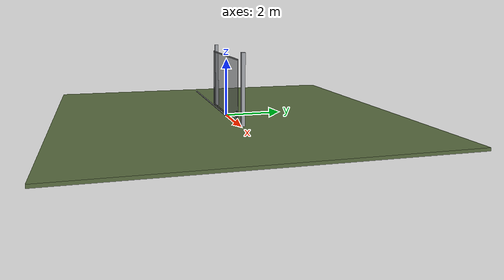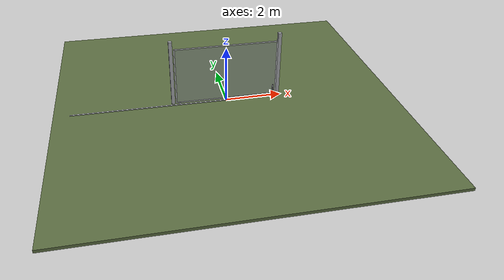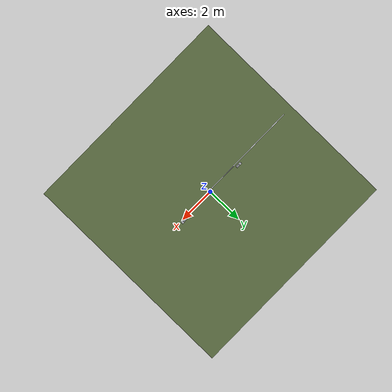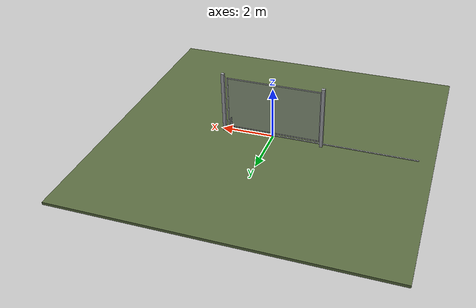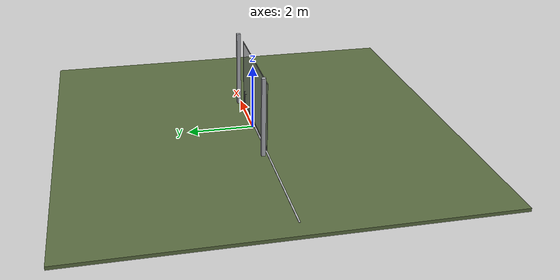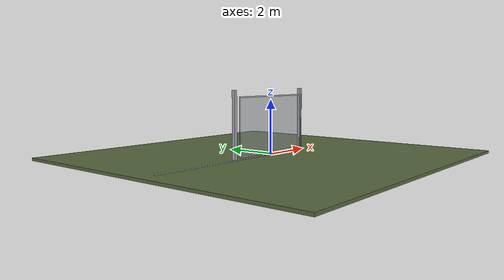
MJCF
<?xml version="1.0" ?>
<mujoco model="db0033_gate_sliding_full">
  <compiler angle="radian" meshdir="../../hardware" texturedir="../../textures" autolimits="true" inertiafromgeom="false"/>
  <option timestep="0.002" integrator="implicitfast" cone="elliptic" impratio="10" noslip_iterations="3">
    <flag multiccd="enable"/>
  </option>
  <size memory="16M"/>
  <default>
    <geom condim="4" solref="0.005 1" solimp="0.95 0.99 0.001"/>
    <joint solreflimit="0.005 1" solimplimit="0.95 0.99 0.001"/>
    <tendon solreflimit="0.005 1"/>
    <equality solref="0.002 1"/>
  </default>
  <visual>
    <headlight ambient="0.4 0.4 0.4" diffuse="0.7 0.7 0.7" specular="0.2 0.2 0.2"/>
    <quality shadowsize="4096"/>
    <map znear="0.01" zfar="60"/>
  </visual>
  <asset>
    <material name="mat_floor" rgba="0.35 0.42 0.25 1" specular="0.2" shininess="0.15" reflectance="0"/>
    <material name="mat_wall" rgba="0.78 0.76 0.7 1" specular="0.2" shininess="0.1" reflectance="0"/>
    <material name="mat_frame" rgba="0.65 0.66 0.68 1" specular="0.74" shininess="0.5" reflectance="0.36"/>
    <material name="mat_track" rgba="0.8 0.81 0.83 1" specular="0.8" shininess="0.6" reflectance="0.4"/>
    <material name="mat_leaf" rgba="0.7 0.71 0.72 1" specular="0.74" shininess="0.5" reflectance="0.36"/>
    <material name="mat_mesh_infill" rgba="0.6 0.62 0.64 0.55" specular="0.68" shininess="0.3" reflectance="0.1"/>
    <material name="mat_roller" rgba="0.65 0.66 0.68 1" specular="0.74" shininess="0.5" reflectance="0.36"/>
    <material name="mat_op_steel_galvanized" rgba="0.65 0.66 0.68 1" specular="0.74" shininess="0.5" reflectance="0.36"/>
    <material name="mat_keeper" rgba="0.65 0.66 0.68 1" specular="0.74" shininess="0.5" reflectance="0.36"/>
    <material name="mat_hook" rgba="0.75 0.76 0.77 1" specular="0.8" shininess="0.65" reflectance="0.4"/>
    <texture name="skybox" type="skybox" builtin="gradient" rgb1="0.6 0.7 0.85" rgb2="0.9 0.92 0.95" width="256" height="256"/>
  </asset>
  <worldbody>
    <light name="sun" pos="1.5 -2.5 4" dir="-0.3 0.5 -0.8" directional="true" diffuse="0.8 0.8 0.8" specular="0.3 0.3 0.3" castshadow="true"/>
    <light name="fill" pos="-1.5 2.5 3" dir="0.3 -0.5 -0.7" directional="true" diffuse="0.35 0.35 0.4" castshadow="false"/>
    <camera name="robot_view" pos="0 -4.046875 2.208125" xyaxes="1 0 0 0 0.26963 0.962964" fovy="52"/>
    <camera name="far_view" pos="0 4.046875 2.208125" xyaxes="-1 0 0 0 -0.26963 0.962964" fovy="52"/>
    <camera name="iso" pos="3.075625 -3.399375 2.855625" xyaxes="0.741536 0.670913 0 -0.242917 0.268487 0.932151" fovy="46"/>
    <camera name="detail_handle" pos="1.93 -1.2455 0.716" xyaxes="0.975133 0.221621 0 -0.065674 0.288965 0.955084" fovy="38"/>
    <geom name="floor" type="box" size="6 6 0.05" pos="0 0 -0.05" material="mat_floor" group="0" contype="1" conaffinity="1" friction="0.8 0.005 0.0001" density="2400"/>
    <geom name="post_l" type="box" size="0.06 0.06 1.2" pos="-1.885 0.08 1.2" material="mat_frame" group="0" contype="1" conaffinity="1" friction="0.6 0.005 0.0001" density="7850"/>
    <geom name="post_r" type="box" size="0.06 0.06 1.2" pos="1.885 0.08 1.2" material="mat_frame" group="0" contype="1" conaffinity="1" friction="0.6 0.005 0.0001" density="7850"/>
    <geom name="gate_rail" type="box" size="3.65 0.02 0.012" pos="-1.8 -0.06 0.012" material="mat_track" group="0" contype="1" conaffinity="1" friction="0.6 0.005 0.0001" density="2700"/>
    <geom name="leaf_socket_n" type="box" size="0.004 0.02 0.02" pos="1.664 -0.0815 0.04" material="mat_keeper" group="0" contype="1" conaffinity="1" friction="0.6 0.005 0.0001" density="7800"/>
    <geom name="leaf_socket_p" type="box" size="0.004 0.02 0.02" pos="1.696 -0.0815 0.04" material="mat_keeper" group="0" contype="1" conaffinity="1" friction="0.6 0.005 0.0001" density="7800"/>
    <geom name="leaf_socket_b" type="box" size="0.02 0.004 0.02" pos="1.68 -0.0655 0.04" material="mat_keeper" group="0" contype="1" conaffinity="1" friction="0.6 0.005 0.0001" density="7800"/>
    <geom name="leaf_socket_base" type="box" size="0.024 0.024 0.01" pos="1.68 -0.0815 0.01" material="mat_keeper" group="1" contype="0" conaffinity="0" density="7800"/>
    <site name="approach_point" pos="0 -1.5 0" quat="1 0 0 0" size="0.05" rgba="0.2 0.9 0.2 0.5" group="4"/>
    <site name="goal_point" pos="0 1.5 0" quat="1 0 0 0" size="0.05" rgba="0.2 0.9 0.2 0.5" group="4"/>
    <site name="door_plane_center" pos="0 0 1.075" quat="1 0 0 0" size="0.02" rgba="0.2 0.9 0.2 0.5" group="4"/>
    <body name="leaf" pos="0 -0.06 0">
      <inertial pos="0.032109 -0.000193 1.043465" mass="19.81952" quat="0.707146 0.70691 0.010455 -0.010638" diaginertia="8.258265609 24.097715923 32.355711978"/>
      <joint name="leaf_slide" type="slide" axis="-1 0 0" limited="true" range="0 3.6" damping="3.04019" frictionloss="6.630507" armature="0.5"/>
      <geom name="leaf_slab_col" type="box" size="1.8 0.0015 1.05" pos="0 0 1.13" material="mat_leaf" group="3" contype="1" conaffinity="1" rgba="0.8 0.3 0.3 0.25" friction="0.45 0.005 0.0001" density="1"/>
      <geom name="leaf_rail_b" type="box" size="1.8 0.0015 0.0225" pos="0 0 0.1025" material="mat_leaf" group="1" contype="0" conaffinity="0" density="1"/>
      <geom name="leaf_rail_t" type="box" size="1.8 0.0015 0.0225" pos="0 0 2.1575" material="mat_leaf" group="1" contype="0" conaffinity="0" density="1"/>
      <geom name="leaf_stile_h" type="box" size="0.0225 0.0015 1.05" pos="-1.7775 0 1.13" material="mat_leaf" group="1" contype="0" conaffinity="0" density="1"/>
      <geom name="leaf_stile_l" type="box" size="0.0225 0.0015 1.05" pos="1.7775 0 1.13" material="mat_leaf" group="1" contype="0" conaffinity="0" density="1"/>
      <geom name="leaf_mesh" type="box" size="1.755 0.0015 1.005" pos="0 0 1.13" material="mat_mesh_infill" group="1" contype="0" conaffinity="0" density="1"/>
      <geom name="leaf_roller_0" type="cylinder" size="0.04 0.008" pos="-1.66 0 0.064" quat="0.707107 -0.707107 0 0" material="mat_roller" group="1" contype="0" conaffinity="0" density="7850"/>
      <geom name="leaf_roller_1" type="cylinder" size="0.04 0.008" pos="1.58 0 0.064" quat="0.707107 -0.707107 0 0" material="mat_roller" group="1" contype="0" conaffinity="0" density="7850"/>
      <geom name="leaf_slide_bolt_plate" type="box" size="0.196 0.023 0.001" pos="1.68 -0.0025 0.284" quat="-0.5 -0.5 -0.5 0.5" material="mat_op_steel_galvanized" group="1" contype="0" conaffinity="0" density="7800"/>
      <geom name="leaf_slide_bolt_guide_0_leg_n" type="box" size="0.006 0.002 0.0185" pos="1.665 -0.02 0.096" quat="-0.5 -0.5 -0.5 0.5" material="mat_op_steel_galvanized" group="1" contype="0" conaffinity="0" density="7800"/>
      <geom name="leaf_slide_bolt_guide_0_leg_p" type="box" size="0.006 0.002 0.0185" pos="1.695 -0.02 0.096" quat="-0.5 -0.5 -0.5 0.5" material="mat_op_steel_galvanized" group="1" contype="0" conaffinity="0" density="7800"/>
      <geom name="leaf_slide_bolt_guide_0_bridge" type="box" size="0.006 0.017 0.002" pos="1.68 -0.0365 0.096" quat="-0.5 -0.5 -0.5 0.5" material="mat_op_steel_galvanized" group="1" contype="0" conaffinity="0" density="7800"/>
      <geom name="leaf_slide_bolt_guide_1_leg_n" type="box" size="0.006 0.002 0.0185" pos="1.665 -0.02 0.47" quat="-0.5 -0.5 -0.5 0.5" material="mat_op_steel_galvanized" group="1" contype="0" conaffinity="0" density="7800"/>
      <geom name="leaf_slide_bolt_guide_1_leg_p" type="box" size="0.006 0.002 0.0185" pos="1.695 -0.02 0.47" quat="-0.5 -0.5 -0.5 0.5" material="mat_op_steel_galvanized" group="1" contype="0" conaffinity="0" density="7800"/>
      <geom name="leaf_slide_bolt_guide_1_bridge" type="box" size="0.006 0.017 0.002" pos="1.68 -0.0365 0.47" quat="-0.5 -0.5 -0.5 0.5" material="mat_op_steel_galvanized" group="1" contype="0" conaffinity="0" density="7800"/>
      <geom name="leaf_slide_bolt_guide_2_leg_n" type="box" size="0.006 0.002 0.0185" pos="1.665 -0.02 0.283" quat="-0.5 -0.5 -0.5 0.5" material="mat_op_steel_galvanized" group="1" contype="0" conaffinity="0" density="7800"/>
      <geom name="leaf_slide_bolt_guide_2_leg_p" type="box" size="0.006 0.002 0.0185" pos="1.695 -0.02 0.283" quat="-0.5 -0.5 -0.5 0.5" material="mat_op_steel_galvanized" group="1" contype="0" conaffinity="0" density="7800"/>
      <geom name="leaf_slide_bolt_guide_2_bridge" type="box" size="0.006 0.017 0.002" pos="1.68 -0.0365 0.283" quat="-0.5 -0.5 -0.5 0.5" material="mat_op_steel_galvanized" group="1" contype="0" conaffinity="0" density="7800"/>
      <site name="leaf_edge_mid" pos="1.8 0 1.13" quat="1 0 0 0" size="0.02" rgba="0.2 0.9 0.2 0.5" group="4"/>
      <body name="leaf_slide_bolt" pos="1.68 -0.0215 0.08">
        <inertial pos="0 -0.005155 0.144148" mass="0.98428" quat="-0.022342 0.706754 -0.022342 0.706754" diaginertia="0.000222618 0.011640367 0.011815899"/>
        <joint name="leaf_slide_bolt_slide" type="slide" axis="0 0 1" limited="true" range="0 0.08" damping="2" frictionloss="3" armature="0.1"/>
        <geom name="leaf_slide_bolt_rod" type="capsule" size="0.01 0.167" pos="0 0 0.123" quat="0 1 0 0" material="mat_op_steel_galvanized" group="0" contype="1" conaffinity="1" friction="0.6 0.005 0.0001" density="7850"/>
        <geom name="leaf_slide_bolt_knob" type="capsule" size="0.008 0.022" pos="0 -0.03 0.286" quat="0.707107 0.707107 0 0" material="mat_op_steel_galvanized" group="0" contype="1" conaffinity="1" friction="0.6 0.005 0.0001" density="7850"/>
        <geom name="leaf_slide_bolt_knob_end" type="sphere" size="0.0108" pos="0 -0.06 0.286" material="mat_op_steel_galvanized" group="1" contype="0" conaffinity="0" density="7850"/>
        <site name="leaf_grip_bolt" pos="0 -0.064 0.286" quat="1 0 0 0" size="0.012" rgba="0.2 0.9 0.2 0.5" group="4"/>
      </body>
    </body>
  </worldbody>
  <sensor>
    <jointpos name="leaf_slide_pos" joint="leaf_slide"/>
    <jointvel name="leaf_slide_vel" joint="leaf_slide"/>
    <jointpos name="leaf_slide_bolt_slide_pos" joint="leaf_slide_bolt_slide"/>
    <jointvel name="leaf_slide_bolt_slide_vel" joint="leaf_slide_bolt_slide"/>
  </sensor>
</mujoco>
